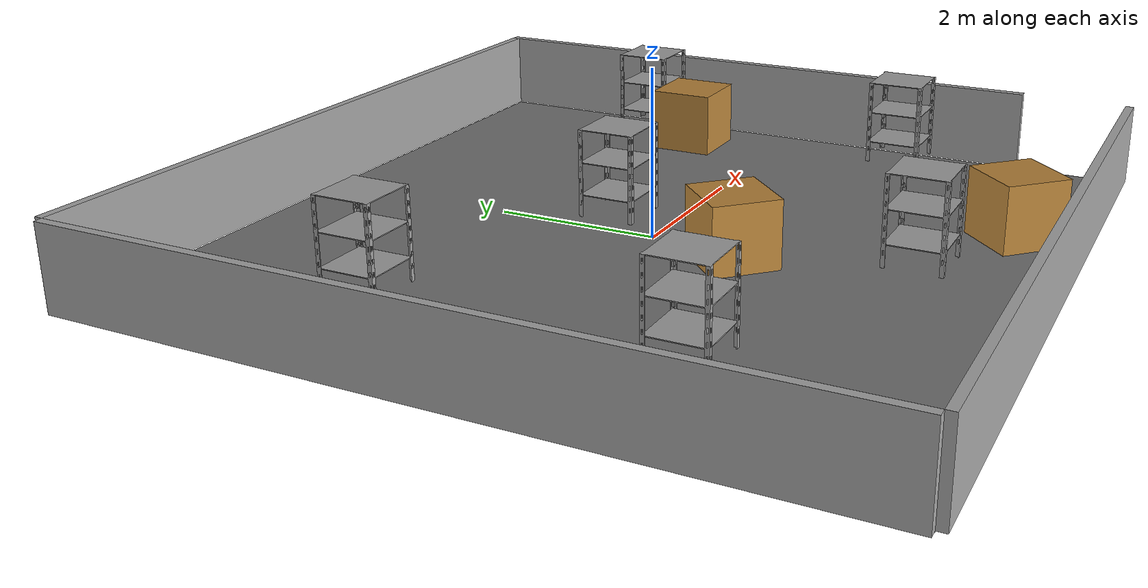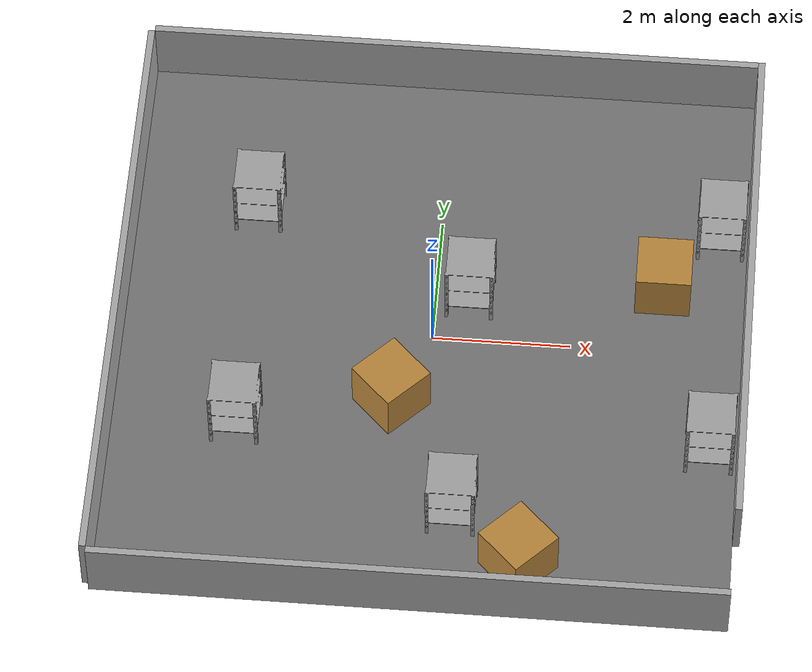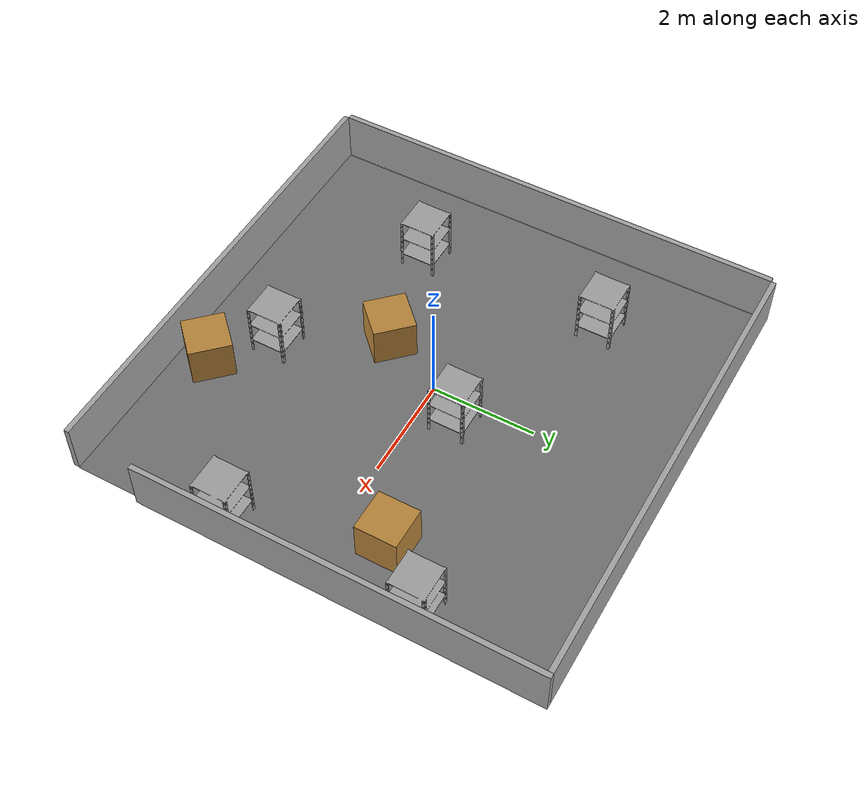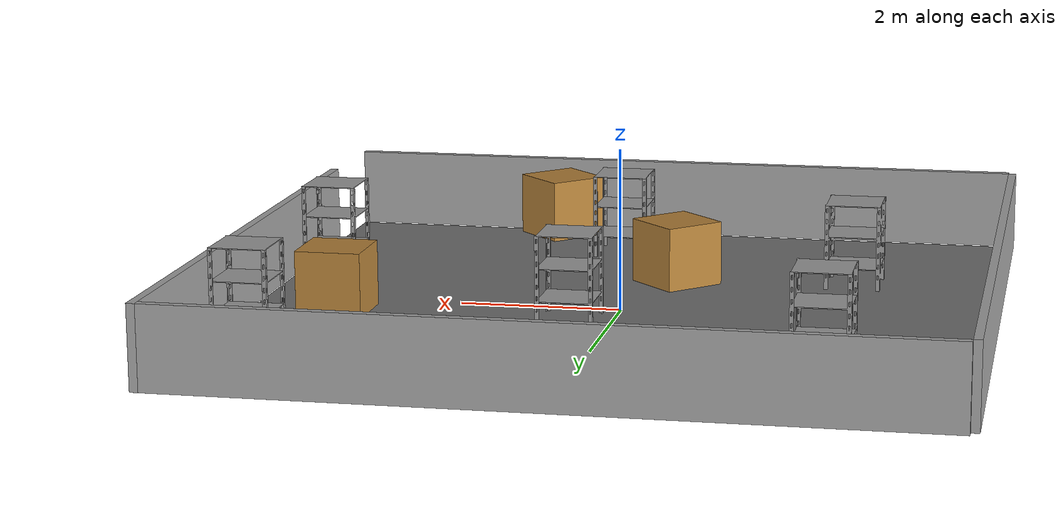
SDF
<?xml version="1.0" ?>
<sdf version="1.9">

  <world name="CyberWaster_Sim2">

    <!-- Required system plugins — must use short filename (no lib prefix / .so suffix) -->
    <plugin filename="ignition-gazebo-physics-system"
            name="ignition::gazebo::systems::Physics"/>
    <plugin filename="ignition-gazebo-user-commands-system"
            name="ignition::gazebo::systems::UserCommands"/>
    <plugin filename="ignition-gazebo-scene-broadcaster-system"
            name="ignition::gazebo::systems::SceneBroadcaster"/>
    <!-- ogre2 required server-side for gpu_lidar; GUI uses --render-engine ogre separately -->
    <plugin filename="ignition-gazebo-sensors-system"
            name="ignition::gazebo::systems::Sensors">
      <render_engine>ogre2</render_engine>
    </plugin>

    <gravity>0 0 -9.8</gravity>
    <atmosphere type='adiabatic'/>
    <physics type='ode'>
      <max_step_size>0.001</max_step_size>
      <real_time_factor>1</real_time_factor>
      <real_time_update_rate>1000</real_time_update_rate>
    </physics>
    <scene>
      <ambient>0.4 0.4 0.4 1</ambient>
      <background>0.7 0.7 0.7 1</background>
      <shadows>true</shadows>
    </scene>

    <!-- Sun Light -->
    <light type="directional" name="sun">
      <pose>0 0 10 0 0 0</pose>
      <diffuse>1 1 1 1</diffuse>
      <direction>-0.5 0.1 -0.9</direction>
    </light>

    <!-- Ground Plane -->
    <model name="ground_floor">
      <static>true</static>
      <link name="link">
        <collision name="collision">
          <geometry>
            <plane>
              <normal>0 0 1</normal>
              <size>9 9</size>
            </plane>
          </geometry>
        </collision>
        <visual name="visual">
          <geometry>
            <plane>
              <normal>0 0 1</normal>
              <size>9 9</size>
            </plane>
          </geometry>
          <material>
            <ambient>0.45 0.45 0.45 1</ambient>
            <diffuse>0.45 0.45 0.45 1</diffuse>
            <specular>0.1 0.1 0.1 1</specular>
          </material>
        </visual>
      </link>
    </model>

    <!-- Walls around 9x9 area -->
    <model name="map_walls">
      <static>true</static>

      <link name="west_wall">
        <pose>0 4.55 0.5 0 0 0</pose>
        <collision name="collision">
          <geometry><box><size>9 0.1 1.0</size></box></geometry>
        </collision>
        <visual name="visual">
          <geometry><box><size>9 0.1 1.0</size></box></geometry>
          <material>
            <ambient>0.65 0.65 0.65 1</ambient>
            <diffuse>0.65 0.65 0.65 1</diffuse>
            <specular>0.05 0.05 0.05 1</specular>
          </material>
        </visual>
      </link>

      <link name="east_wall">
        <pose>0 -4.55 0.5 0 0 0</pose>
        <collision name="collision">
          <geometry><box><size>9 0.1 1.0</size></box></geometry>
        </collision>
        <visual name="visual">
          <geometry><box><size>9 0.1 1.0</size></box></geometry>
          <material>
            <ambient>0.65 0.65 0.65 1</ambient>
            <diffuse>0.65 0.65 0.65 1</diffuse>
            <specular>0.05 0.05 0.05 1</specular>
          </material>
        </visual>
      </link>

      <link name="north_wall">
        <pose>4.55 0.7 0.5 0 0 0</pose>
        <collision name="collision">
          <geometry><box><size>0.1 7.8 1.0</size></box></geometry>
        </collision>
        <visual name="visual">
          <geometry><box><size>0.1 7.8 1.0</size></box></geometry>
          <material>
            <ambient>0.65 0.65 0.65 1</ambient>
            <diffuse>0.65 0.65 0.65 1</diffuse>
            <specular>0.05 0.05 0.05 1</specular>
          </material>
        </visual>
      </link>

      <link name="south_wall">
        <pose>-4.55 0 0.5 0 0 0</pose>
        <collision name="collision">
          <geometry><box><size>0.1 9 1.0</size></box></geometry>
        </collision>
        <visual name="visual">
          <geometry><box><size>0.1 9 1.0</size></box></geometry>
          <material>
            <ambient>0.65 0.65 0.65 1</ambient>
            <diffuse>0.65 0.65 0.65 1</diffuse>
            <specular>0.05 0.05 0.05 1</specular>
          </material>
        </visual>
      </link>
    </model>

    <!-- Box Obstacles -->
    <model name="box_obstacles">

      <link name="box1">
        <pose>-0.5 -1.2 0.5 0 0 0.7854</pose>
        <collision name="collision">
          <geometry><box><size>0.8 0.8 0.8</size></box></geometry>
        </collision>
        <visual name="visual">
          <geometry><box><size>0.8 0.8 0.8</size></box></geometry>
          <material>
            <ambient>0.70 0.49 0.22 1</ambient>
            <diffuse>0.72 0.52 0.23 1</diffuse>
            <specular>0.02 0.02 0.02 1</specular>
          </material>
        </visual>
      </link>

      <link name="box2">
        <pose>3.3 1.0 0.5 0 0 0</pose>
        <collision name="collision">
          <geometry><box><size>0.9 0.9 0.9</size></box></geometry>
        </collision>
        <visual name="visual">
          <geometry><box><size>0.8 0.8 0.8</size></box></geometry>
          <material>
            <ambient>0.70 0.49 0.22 1</ambient>
            <diffuse>0.72 0.52 0.23 1</diffuse>
            <specular>0.02 0.02 0.02 1</specular>
          </material>
        </visual>
      </link>

      <link name="box3">
        <pose>1.5 -3.8 0.5 0 0 0.7854</pose>
        <collision name="collision">
          <geometry><box><size>0.8 0.8 0.8</size></box></geometry>
        </collision>
        <visual name="visual">
          <geometry><box><size>0.8 0.8 0.8</size></box></geometry>
          <material>
            <ambient>0.70 0.49 0.22 1</ambient>
            <diffuse>0.72 0.52 0.23 1</diffuse>
            <specular>0.02 0.02 0.02 1</specular>
          </material>
        </visual>
      </link>

    </model>

    <!-- Shelves — moved to world level (include inside model is invalid SDF 1.7) -->
    <include>
      <uri>https://fuel.gazebosim.org/1.0/MovAi/models/shelf</uri>
      <pose>-2.7 2.0 0.05 0 0 -1.5708</pose>
      <name>shelf1</name>
    </include>

    <include>
      <uri>https://fuel.gazebosim.org/1.0/MovAi/models/shelf</uri>
      <pose>-2.7 -1.7 0.05 0 0 -1.5708</pose>
      <name>shelf2</name>
    </include>

    <include>
      <uri>https://fuel.gazebosim.org/1.0/MovAi/models/shelf</uri>
      <pose>0.5 -3.0 0.05 0 0 -1.5708</pose>
      <name>shelf3</name>
    </include>

    <include>
      <uri>https://fuel.gazebosim.org/1.0/MovAi/models/shelf</uri>
      <pose>0.5 0.7 0.05 0 0 -1.5708</pose>
      <name>shelf4</name>
    </include>

    <include>
      <uri>https://fuel.gazebosim.org/1.0/MovAi/models/shelf</uri>
      <pose>4.1 2.0 0.05 0 0 -1.5708</pose>
      <name>shelf5</name>
    </include>

    <include>
      <uri>https://fuel.gazebosim.org/1.0/MovAi/models/shelf</uri>
      <pose>4.1 -1.7 0.05 0 0 -1.5708</pose>
      <name>shelf6</name>
    </include>

  </world>
</sdf>

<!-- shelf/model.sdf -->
<sdf version='1.6'>
  <model name='shelf'>
    <link name='link'>
      <inertial>
        <mass>0.1</mass>
        <inertia>
          <ixx>1</ixx>
          <ixy>0.00</ixy>
          <ixz>0.00</ixz>
          <iyy>1</iyy>
          <iyz>0.00</iyz>
          <izz>1</izz>
        </inertia>
      </inertial>
      <pose frame=''>0 0 0 0 -0 0</pose>
      <visual name='visual'>
        <pose frame=''>0 0 0 0 -0 0</pose>
        <geometry>
          <mesh>
            <uri>model://shelf/meshes/shelf.dae</uri>
            <scale>1 1 1</scale>
          </mesh>
        </geometry>
        <transparency>0</transparency>
        <cast_shadows>1</cast_shadows>
      </visual>
      <collision name='collision'>
        <laser_retro>0</laser_retro>
        <max_contacts>10</max_contacts>
        <pose frame=''>0 0 0 0 -0 0</pose>
        <geometry>
          <mesh>
            <uri>model://shelf/meshes/shelf.dae</uri>
            <scale>1 1 1</scale>
          </mesh>
        </geometry>
        <surface>
          <friction>
            <ode>
              <mu>1</mu>
              <mu2>1</mu2>
              <fdir1>0 0 0</fdir1>
              <slip1>0</slip1>
              <slip2>0</slip2>
            </ode>
            <torsional>
              <coefficient>1</coefficient>
              <patch_radius>1</patch_radius>
              <surface_radius>1</surface_radius>
              <use_patch_radius>1</use_patch_radius>
              <ode>
                <slip>0</slip>
              </ode>
            </torsional>
          </friction>
          <bounce>
            <restitution_coefficient>1</restitution_coefficient>
            <threshold>1e+06</threshold>
          </bounce>
          <contact>
            <collide_without_contact>0</collide_without_contact>
            <collide_without_contact_bitmask>1</collide_without_contact_bitmask>
            <collide_bitmask>1</collide_bitmask>
            <ode>
              <soft_cfm>0</soft_cfm>
              <soft_erp>0.2</soft_erp>
              <kp>1e+13</kp>
              <kd>1</kd>
              <max_vel>0.01</max_vel>
              <min_depth>0</min_depth>
            </ode>
            <bullet>
              <split_impulse>1</split_impulse>
              <split_impulse_penetration_threshold>-0.01</split_impulse_penetration_threshold>
              <soft_cfm>0</soft_cfm>
              <soft_erp>0.2</soft_erp>
              <kp>1e+13</kp>
              <kd>1</kd>
            </bullet>
          </contact>
        </surface>
      </collision>
    </link>
    <static>0</static>
    <allow_auto_disable>1</allow_auto_disable>
  </model>
</sdf>
